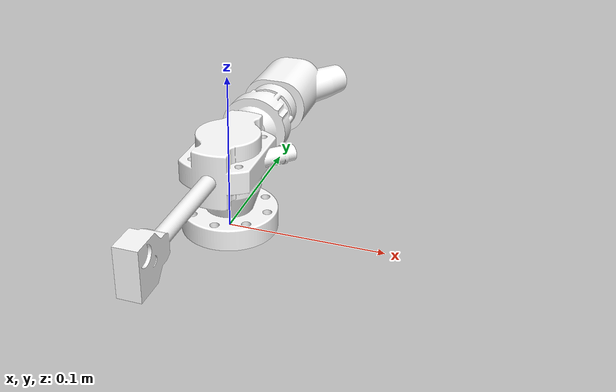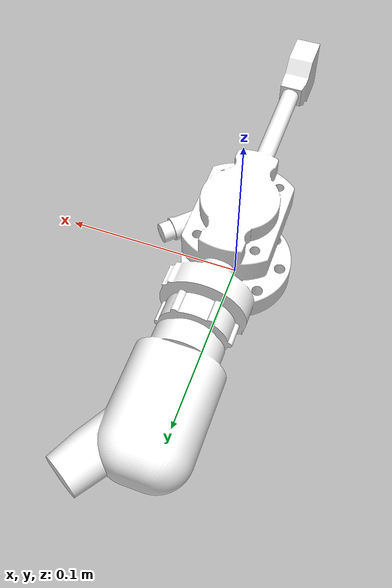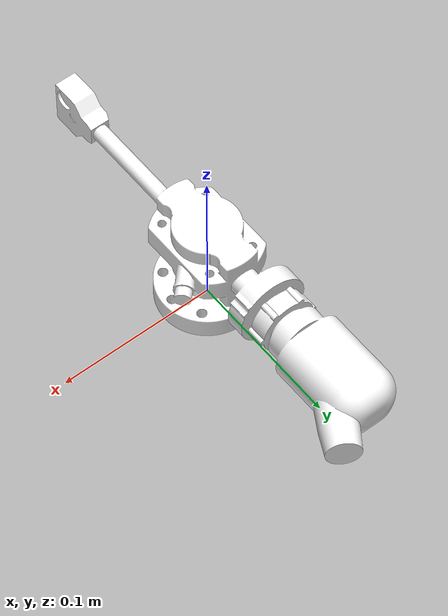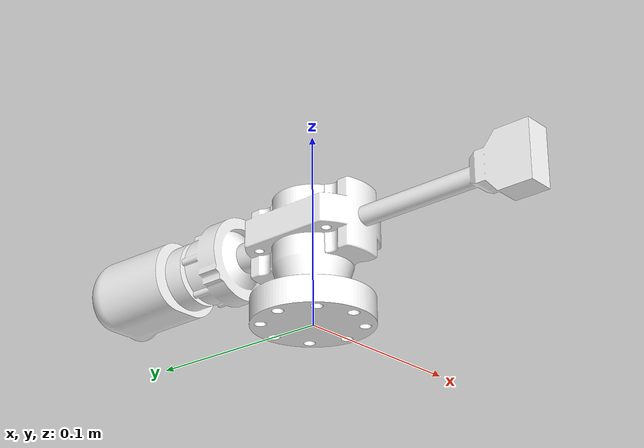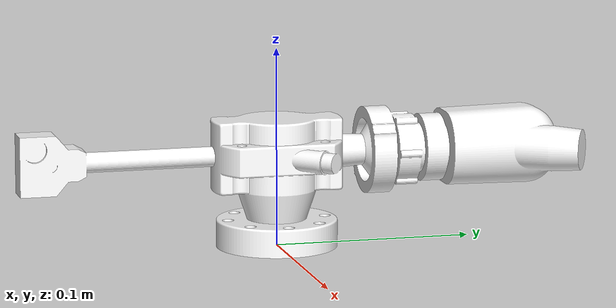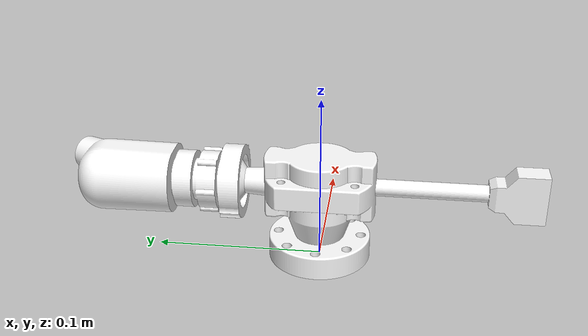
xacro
<?xml version="1.0"?>

<!-- Here we define the robot, we named it "exoscope" -->
<robot xmlns:xacro="http://www.ros.org/wiki/xacro" name="exoscope">

    <!--Import the exoscope macro -->
    <xacro:include filename="$(find storz_exoscope_description)/urdf/storz_exoscope_description.urdf.xacro"/>

    <!--  Arguments for the med7 macro  -->
    <xacro:arg name="exoscope_name" default="storz_exoscope"/>
    <xacro:arg name="robot_name" default="lbr"/>

    <!-- fix to world -->
    <link name="world"/>

    <!-- insert exoscope -->
    <xacro:storz_exoscope  exoscope_name="$(arg exoscope_name)" robot_name="$(arg robot_name)" parent="world"/>

</robot>

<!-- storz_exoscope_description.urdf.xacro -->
<robot xmlns:xacro="http://www.ros.org/wiki/xacro">

    <xacro:macro name="storz_exoscope" params="exoscope_name robot_name parent">

        <!-- include gazebo specifications -->
        <xacro:include filename="$(find storz_exoscope_description)/gazebo/storz_exoscope.gazebo.xacro" />

        <!--joint between {parent} and link_0-->
        <joint name="${parent}_${exoscope_name}_joint" type="fixed">
            <parent link="${parent}"/>
            <child link="${exoscope_name}_link_0"/>
            <origin xyz="0 0 0" rpy="0 -1.57079632679 1.57079632679"/>
        </joint>

        <!-- link 0 -->
        <link name="${exoscope_name}_link_0">
            <inertial>
                <origin rpy="0 0 0" xyz="0.03997881004884705 -0.0005082075189353901 -0.03926307553084657"/>
                <mass value="2.1436339240369744"/>
                <inertia ixx="0.008938" ixy="7e-06" ixz="0.000553" iyy="0.009241" iyz="-0.000113" izz="0.000887"/>
            </inertial>
            <visual>
                <origin rpy="0 0 0" xyz="0 0 0"/>
                <geometry>
                    <mesh filename="package://storz_exoscope_description/meshes/visual/link_0.stl" scale="0.001 0.001 0.001"/>
                </geometry>
                <material name="white">
                    <color rgba="1.0 1.0 1.0 1.0"/>
                </material>
            </visual>
            <collision>
                <origin rpy="0 0 0" xyz="0 0 0"/>
                <geometry>
                    <mesh filename="package://storz_exoscope_description/meshes/collision/link_0.stl" scale="0.001 0.001 0.001"/>
                </geometry>
            </collision>
        </link>

        <joint name="${exoscope_name}_joint_cm" type="fixed">
            <origin rpy="0 0 -1.57079632679" xyz="0.047 -0.005826 0.115248"/>
            <parent link="${exoscope_name}_link_0"/>
            <child link="${exoscope_name}_link_cm"/>
        </joint>

        <!-- camera link -->
        <link name="${exoscope_name}_link_cm"/>

        <!-- optical frame https://answers.ros.org/question/232534/gazebo-camera-frame-is-inconsistent-with-rviz-opencv-convention/ -->
        <joint name="${exoscope_name}_joint_cm_optical" type="fixed">  <!-- add continuous joint to rotate image digitally -->
            <parent link="${exoscope_name}_link_cm"/>
            <child link="${exoscope_name}_link_cm_optical"/>
            <origin xyz="0 0 0" rpy="-1.57079632679 0 -1.57079632679"/>
            <!--axis xyz="0.0 0.0 0.01"/-->  <!-- rotate about the optical axis -->
        </joint>

        <link name="${exoscope_name}_link_cm_optical">
        </link>

        <!-- extensions -->
        <xacro:storz_exoscope_gazebo exoscope_name="${exoscope_name}" robot_name="${robot_name}"/>

    </xacro:macro>
</robot>
